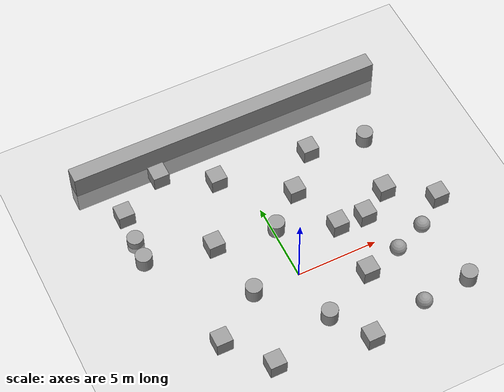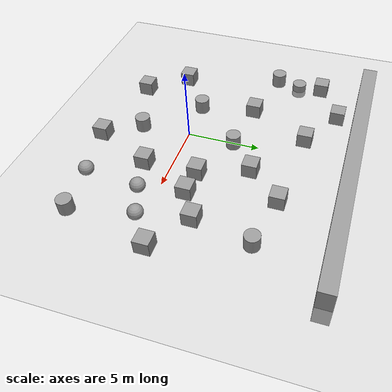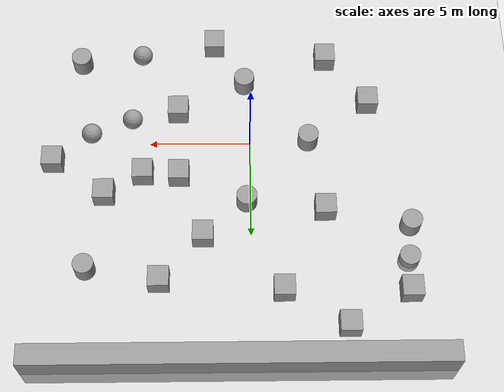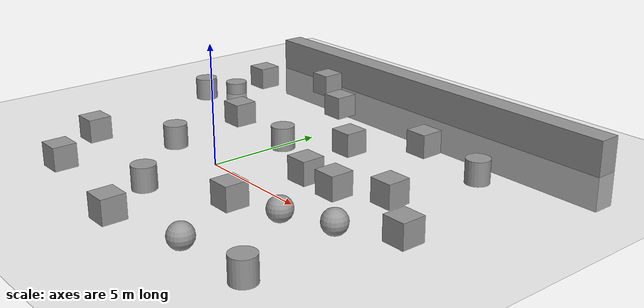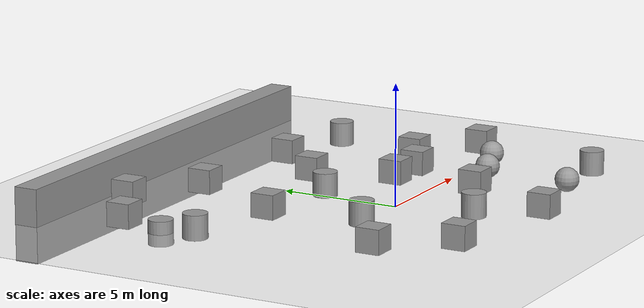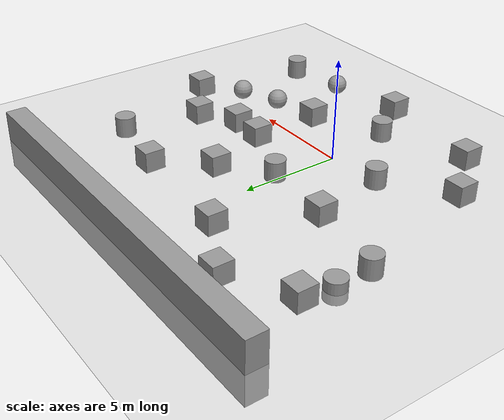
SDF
<sdf version="1.6">
 <world name="default">
  <light name="sun" type="directional">
   <pose>0 0 10 0 -0 0</pose>
   <diffuse>0.8 0.8 0.8 1</diffuse>
   <specular>0.2 0.2 0.2 1</specular>
   <attenuation>
    <range>1000</range>
    <constant>0.9</constant>
    <linear>0.01</linear>
    <quadratic>0.001</quadratic>
   </attenuation>
   <direction>-0.5 0.1 -0.9</direction>
  </light>
  <model name="ground_plane">
   <static>1</static>
   <link name="link">
    <collision name="collision">
     <geometry><plane><normal>0 0 1</normal><size>100 100</size></plane></geometry>
     <surface><friction><ode><mu>100</mu><mu2>50</mu2></ode></friction></surface>
    </collision>
    <visual name="visual">
     <cast_shadows>0</cast_shadows>
     <geometry><plane><normal>0 0 1</normal><size>100 100</size></plane></geometry>
     <material>
      <script><uri>file://media/materials/scripts/gazebo.material</uri><name>Gazebo/Grey</name></script>
     </material>
    </visual>
   </link>
  </model>
  <gravity>0 0 -9.8</gravity>
  <magnetic_field>6e-06 2.3e-05 -4.2e-05</magnetic_field>
  <atmosphere type="adiabatic"/>
  <physics name="default_physics" default="0" type="ode">
   <max_step_size>0.001</max_step_size>
   <real_time_factor>1</real_time_factor>
   <real_time_update_rate>1000</real_time_update_rate>
  </physics>
  <scene><ambient>0.4 0.4 0.4 1</ambient><background>0.7 0.7 0.7 1</background><shadows>1</shadows></scene>
  <spherical_coordinates>
   <surface_model>EARTH_WGS84</surface_model>
   <latitude_deg>0</latitude_deg>
   <longitude_deg>0</longitude_deg>
   <elevation>0</elevation>
   <heading_deg>0</heading_deg>
  </spherical_coordinates>
  <model name="unit_box">
   <pose>3.50577 1.84828 0.499995 -1e-05 0 0</pose>
   <link name="link">
    <inertial>
     <mass>1</mass>
     <inertia>
      <ixx>0.166667</ixx>
      <ixy>0</ixy>
      <ixz>0</ixz>
      <iyy>0.166667</iyy>
      <iyz>0</iyz>
      <izz>0.166667</izz>
     </inertia>
    </inertial>
    <collision name="collision"><geometry><box><size>1 1 1</size></box></geometry></collision>
    <visual name="visual">
     <geometry><box><size>1 1 1</size></box></geometry>
     <material>
      <script><name>Gazebo/Grey</name><uri>file://media/materials/scripts/gazebo.material</uri></script>
     </material>
    </visual>
   </link>
  </model>
  <model name="unit_box_0">
   <pose>3.58099 -1.73235 0.499995 0 1e-05 0</pose>
   <link name="link">
    <inertial>
     <mass>1</mass>
     <inertia>
      <ixx>0.166667</ixx>
      <ixy>0</ixy>
      <ixz>0</ixz>
      <iyy>0.166667</iyy>
      <iyz>0</iyz>
      <izz>0.166667</izz>
     </inertia>
    </inertial>
    <collision name="collision"><geometry><box><size>1 1 1</size></box></geometry></collision>
    <visual name="visual">
     <geometry><box><size>1 1 1</size></box></geometry>
     <material>
      <script><name>Gazebo/Grey</name><uri>file://media/materials/scripts/gazebo.material</uri></script>
     </material>
    </visual>
   </link>
  </model>
  <model name="unit_box_1">
   <pose>5.28207 1.7655 0.499995 -1e-05 0 0</pose>
   <link name="link">
    <inertial>
     <mass>1</mass>
     <inertia>
      <ixx>0.166667</ixx>
      <ixy>0</ixy>
      <ixz>0</ixz>
      <iyy>0.166667</iyy>
      <iyz>0</iyz>
      <izz>0.166667</izz>
     </inertia>
    </inertial>
    <collision name="collision"><geometry><box><size>1 1 1</size></box></geometry></collision>
    <visual name="visual">
     <geometry><box><size>1 1 1</size></box></geometry>
     <material>
      <script><name>Gazebo/Grey</name><uri>file://media/materials/scripts/gazebo.material</uri></script>
     </material>
    </visual>
   </link>
  </model>
  <model name="unit_box_2">
   <pose>7.14403 2.85686 0.499995 0 1e-05 0</pose>
   <link name="link">
    <inertial>
     <mass>1</mass>
     <inertia>
      <ixx>0.166667</ixx>
      <ixy>0</ixy>
      <ixz>0</ixz>
      <iyy>0.166667</iyy>
      <iyz>0</iyz>
      <izz>0.166667</izz>
     </inertia>
    </inertial>
    <collision name="collision"><geometry><box><size>1 1 1</size></box></geometry></collision>
    <visual name="visual">
     <geometry><box><size>1 1 1</size></box></geometry>
     <material>
      <script><name>Gazebo/Grey</name><uri>file://media/materials/scripts/gazebo.material</uri></script>
     </material>
    </visual>
   </link>
  </model>
  <model name="unit_sphere">
   <pose>5.86637 -1.18146 0.5 0 -0 0</pose>
   <link name="link">
    <inertial>
     <mass>1</mass>
     <inertia><ixx>0.1</ixx><ixy>0</ixy><ixz>0</ixz><iyy>0.1</iyy><iyz>0</iyz><izz>0.1</izz></inertia>
    </inertial>
    <collision name="collision"><geometry><sphere><radius>0.5</radius></sphere></geometry></collision>
    <visual name="visual">
     <geometry><sphere><radius>0.5</radius></sphere></geometry>
     <material>
      <script><name>Gazebo/Grey</name><uri>file://media/materials/scripts/gazebo.material</uri></script>
     </material>
    </visual>
   </link>
  </model>
  <model name="unit_cylinder">
   <pose>0.189928 3.2786 0.5 0 -0 0</pose>
   <link name="link">
    <inertial>
     <mass>1</mass>
     <inertia><ixx>0.145833</ixx><ixy>0</ixy><ixz>0</ixz><iyy>0.145833</iyy><iyz>0</iyz><izz>0.125</izz></inertia>
    </inertial>
    <collision name="collision">
     <geometry><cylinder><radius>0.5</radius><length>1</length></cylinder></geometry>
    </collision>
    <visual name="visual">
     <geometry><cylinder><radius>0.5</radius><length>1</length></cylinder></geometry>
     <material>
      <script><name>Gazebo/Grey</name><uri>file://media/materials/scripts/gazebo.material</uri></script>
     </material>
    </visual>
   </link>
  </model>
  <model name="unit_cylinder_0">
   <pose>0.247804 -3.34009 0.5 0 -0 0</pose>
   <link name="link">
    <inertial>
     <mass>1</mass>
     <inertia><ixx>0.145833</ixx><ixy>0</ixy><ixz>0</ixz><iyy>0.145833</iyy><iyz>0</iyz><izz>0.125</izz></inertia>
    </inertial>
    <collision name="collision">
     <geometry><cylinder><radius>0.5</radius><length>1</length></cylinder></geometry>
    </collision>
    <visual name="visual">
     <geometry><cylinder><radius>0.5</radius><length>1</length></cylinder></geometry>
     <material>
      <script><name>Gazebo/Grey</name><uri>file://media/materials/scripts/gazebo.material</uri></script>
     </material>
    </visual>
   </link>
  </model>
  <model name="unit_cylinder_1">
   <pose>-2.89428 -0.043473 0.5 0 -0 0</pose>
   <link name="link">
    <inertial>
     <mass>1</mass>
     <inertia><ixx>0.145833</ixx><ixy>0</ixy><ixz>0</ixz><iyy>0.145833</iyy><iyz>0</iyz><izz>0.125</izz></inertia>
    </inertial>
    <collision name="collision">
     <geometry><cylinder><radius>0.5</radius><length>1</length></cylinder></geometry>
    </collision>
    <visual name="visual">
     <geometry><cylinder><radius>0.5</radius><length>1</length></cylinder></geometry>
     <material>
      <script><name>Gazebo/Grey</name><uri>file://media/materials/scripts/gazebo.material</uri></script>
     </material>
    </visual>
   </link>
  </model>
  <model name="unit_sphere_0">
   <pose>7.88066 -0.390554 0.5 0 -0 0</pose>
   <link name="link">
    <inertial>
     <mass>1</mass>
     <inertia><ixx>0.1</ixx><ixy>0</ixy><ixz>0</ixz><iyy>0.1</iyy><iyz>0</iyz><izz>0.1</izz></inertia>
    </inertial>
    <collision name="collision"><geometry><sphere><radius>0.5</radius></sphere></geometry></collision>
    <visual name="visual">
     <geometry><sphere><radius>0.5</radius></sphere></geometry>
     <material>
      <script><name>Gazebo/Grey</name><uri>file://media/materials/scripts/gazebo.material</uri></script>
     </material>
    </visual>
   </link>
  </model>
  <model name="unit_box_3">
   <pose>9.74039 1.03192 0.499995 0 1e-05 0</pose>
   <link name="link">
    <inertial>
     <mass>1</mass>
     <inertia>
      <ixx>0.166667</ixx>
      <ixy>0</ixy>
      <ixz>0</ixz>
      <iyy>0.166667</iyy>
      <iyz>0</iyz>
      <izz>0.166667</izz>
     </inertia>
    </inertial>
    <collision name="collision"><geometry><box><size>1 1 1</size></box></geometry></collision>
    <visual name="visual">
     <geometry><box><size>1 1 1</size></box></geometry>
     <material>
      <script><name>Gazebo/Grey</name><uri>file://media/materials/scripts/gazebo.material</uri></script>
     </material>
    </visual>
   </link>
  </model>
  <model name="unit_box_4">
   <pose>4.38415 7.38919 0.499995 -1e-05 0 0</pose>
   <link name="link">
    <inertial>
     <mass>1</mass>
     <inertia>
      <ixx>0.166667</ixx>
      <ixy>0</ixy>
      <ixz>0</ixz>
      <iyy>0.166667</iyy>
      <iyz>0</iyz>
      <izz>0.166667</izz>
     </inertia>
    </inertial>
    <collision name="collision"><geometry><box><size>1 1 1</size></box></geometry></collision>
    <visual name="visual">
     <geometry><box><size>1 1 1</size></box></geometry>
     <material>
      <script><name>Gazebo/Grey</name><uri>file://media/materials/scripts/gazebo.material</uri></script>
     </material>
    </visual>
   </link>
  </model>
  <model name="unit_cylinder_2">
   <pose>7.90939 6.74313 0.5 0 -0 0</pose>
   <link name="link">
    <inertial>
     <mass>1</mass>
     <inertia><ixx>0.145833</ixx><ixy>0</ixy><ixz>0</ixz><iyy>0.145833</iyy><iyz>0</iyz><izz>0.125</izz></inertia>
    </inertial>
    <collision name="collision">
     <geometry><cylinder><radius>0.5</radius><length>1</length></cylinder></geometry>
    </collision>
    <visual name="visual">
     <geometry><cylinder><radius>0.5</radius><length>1</length></cylinder></geometry>
     <material>
      <script><name>Gazebo/Grey</name><uri>file://media/materials/scripts/gazebo.material</uri></script>
     </material>
    </visual>
   </link>
  </model>
  <model name="unit_box_5">
   <pose>-1.51534 7.8739 0.499995 -1e-05 0 0</pose>
   <link name="link">
    <inertial>
     <mass>1</mass>
     <inertia>
      <ixx>0.166667</ixx>
      <ixy>0</ixy>
      <ixz>0</ixz>
      <iyy>0.166667</iyy>
      <iyz>0</iyz>
      <izz>0.166667</izz>
     </inertia>
    </inertial>
    <collision name="collision"><geometry><box><size>1 1 1</size></box></geometry></collision>
    <visual name="visual">
     <geometry><box><size>1 1 1</size></box></geometry>
     <material>
      <script><name>Gazebo/Grey</name><uri>file://media/materials/scripts/gazebo.material</uri></script>
     </material>
    </visual>
   </link>
  </model>
  <model name="unit_cylinder_3">
   <pose>8.55962 -4.63166 0.5 0 -0 0</pose>
   <link name="link">
    <inertial>
     <mass>1</mass>
     <inertia><ixx>0.145833</ixx><ixy>0</ixy><ixz>0</ixz><iyy>0.145833</iyy><iyz>0</iyz><izz>0.125</izz></inertia>
    </inertial>
    <collision name="collision">
     <geometry><cylinder><radius>0.5</radius><length>1</length></cylinder></geometry>
    </collision>
    <visual name="visual">
     <geometry><cylinder><radius>0.5</radius><length>1</length></cylinder></geometry>
     <material>
      <script><name>Gazebo/Grey</name><uri>file://media/materials/scripts/gazebo.material</uri></script>
     </material>
    </visual>
   </link>
  </model>
  <model name="unit_sphere_1">
   <pose>5.45948 -4.94432 0.5 0 -0 0</pose>
   <link name="link">
    <inertial>
     <mass>1</mass>
     <inertia><ixx>0.1</ixx><ixy>0</ixy><ixz>0</ixz><iyy>0.1</iyy><iyz>0</iyz><izz>0.1</izz></inertia>
    </inertial>
    <collision name="collision"><geometry><sphere><radius>0.5</radius></sphere></geometry></collision>
    <visual name="visual">
     <geometry><sphere><radius>0.5</radius></sphere></geometry>
     <material>
      <script><name>Gazebo/Grey</name><uri>file://media/materials/scripts/gazebo.material</uri></script>
     </material>
    </visual>
   </link>
  </model>
  <model name="unit_box_6">
   <pose>1.76052 -5.65038 0.499995 0 1e-05 0</pose>
   <link name="link">
    <inertial>
     <mass>1</mass>
     <inertia>
      <ixx>0.166667</ixx>
      <ixy>0</ixy>
      <ixz>0</ixz>
      <iyy>0.166667</iyy>
      <iyz>0</iyz>
      <izz>0.166667</izz>
     </inertia>
    </inertial>
    <collision name="collision"><geometry><box><size>1 1 1</size></box></geometry></collision>
    <visual name="visual">
     <geometry><box><size>1 1 1</size></box></geometry>
     <material>
      <script><name>Gazebo/Grey</name><uri>file://media/materials/scripts/gazebo.material</uri></script>
     </material>
    </visual>
   </link>
  </model>
  <model name="unit_box_7">
   <pose>-3.89826 -4.76949 0.499995 -1e-05 0 0</pose>
   <link name="link">
    <inertial>
     <mass>1</mass>
     <inertia>
      <ixx>0.166667</ixx>
      <ixy>0</ixy>
      <ixz>0</ixz>
      <iyy>0.166667</iyy>
      <iyz>0</iyz>
      <izz>0.166667</izz>
     </inertia>
    </inertial>
    <collision name="collision"><geometry><box><size>1 1 1</size></box></geometry></collision>
    <visual name="visual">
     <geometry><box><size>1 1 1</size></box></geometry>
     <material>
      <script><name>Gazebo/Grey</name><uri>file://media/materials/scripts/gazebo.material</uri></script>
     </material>
    </visual>
   </link>
  </model>
  <model name="unit_box_8">
   <pose>-3.60209 3.74388 0.499995 0 1e-05 0</pose>
   <link name="link">
    <inertial>
     <mass>1</mass>
     <inertia>
      <ixx>0.166667</ixx>
      <ixy>0</ixy>
      <ixz>0</ixz>
      <iyy>0.166667</iyy>
      <iyz>0</iyz>
      <izz>0.166667</izz>
     </inertia>
    </inertial>
    <collision name="collision"><geometry><box><size>1 1 1</size></box></geometry></collision>
    <visual name="visual">
     <geometry><box><size>1 1 1</size></box></geometry>
     <material>
      <script><name>Gazebo/Grey</name><uri>file://media/materials/scripts/gazebo.material</uri></script>
     </material>
    </visual>
   </link>
  </model>
  <model name="unit_box_9">
   <pose>2.31832 5.09354 0.499995 -1e-05 0 0</pose>
   <link name="link">
    <inertial>
     <mass>1</mass>
     <inertia>
      <ixx>0.166667</ixx>
      <ixy>0</ixy>
      <ixz>0</ixz>
      <iyy>0.166667</iyy>
      <iyz>0</iyz>
      <izz>0.166667</izz>
     </inertia>
    </inertial>
    <collision name="collision"><geometry><box><size>1 1 1</size></box></geometry></collision>
    <visual name="visual">
     <geometry><box><size>1 1 1</size></box></geometry>
     <material>
      <script><name>Gazebo/Grey</name><uri>file://media/materials/scripts/gazebo.material</uri></script>
     </material>
    </visual>
   </link>
  </model>
  <model name="unit_box_10">
   <pose>-5.94339 -2.18223 0.499995 0 1e-05 0</pose>
   <link name="link">
    <inertial>
     <mass>1</mass>
     <inertia>
      <ixx>0.166667</ixx>
      <ixy>0</ixy>
      <ixz>0</ixz>
      <iyy>0.166667</iyy>
      <iyz>0</iyz>
      <izz>0.166667</izz>
     </inertia>
    </inertial>
    <collision name="collision"><geometry><box><size>1 1 1</size></box></geometry></collision>
    <visual name="visual">
     <geometry><box><size>1 1 1</size></box></geometry>
     <material>
      <script><name>Gazebo/Grey</name><uri>file://media/materials/scripts/gazebo.material</uri></script>
     </material>
    </visual>
   </link>
  </model>
  <model name="unit_box_11">
   <pose>-7.46237 7.95453 0.499995 -1e-05 0 0</pose>
   <link name="link">
    <inertial>
     <mass>1</mass>
     <inertia>
      <ixx>0.166667</ixx>
      <ixy>0</ixy>
      <ixz>0</ixz>
      <iyy>0.166667</iyy>
      <iyz>0</iyz>
      <izz>0.166667</izz>
     </inertia>
    </inertial>
    <collision name="collision"><geometry><box><size>1 1 1</size></box></geometry></collision>
    <visual name="visual">
     <geometry><box><size>1 1 1</size></box></geometry>
     <material>
      <script><name>Gazebo/Grey</name><uri>file://media/materials/scripts/gazebo.material</uri></script>
     </material>
    </visual>
   </link>
  </model>
  <model name="unit_box_12">
   <link name="link">
    <inertial>
     <mass>1</mass>
     <inertia>
      <ixx>0.166667</ixx>
      <ixy>0</ixy>
      <ixz>0</ixz>
      <iyy>0.166667</iyy>
      <iyz>0</iyz>
      <izz>0.166667</izz>
     </inertia>
    </inertial>
    <visual name="visual">
     <geometry><box><size>1 1 1</size></box></geometry>
     <material>
      <script><name>Gazebo/Grey</name><uri>file://media/materials/scripts/gazebo.material</uri></script>
      <shader type="pixel"><normal_map>__default__</normal_map></shader>
      <ambient>0.3 0.3 0.3 1</ambient>
      <diffuse>0.7 0.7 0.7 1</diffuse>
      <specular>0.01 0.01 0.01 1</specular>
      <emissive>0 0 0 1</emissive>
     </material>
    </visual>
    <collision name="collision">
     <pose>5 0 0 0 -0 0</pose>
     <geometry><box><size>20 1 3</size></box></geometry>
     <surface>
      <friction>
       <ode><mu>1</mu><mu2>1</mu2><fdir1>0 0 0</fdir1><slip1>0</slip1><slip2>0</slip2></ode>
       <torsional>
        <coefficient>1</coefficient>
        <patch_radius>0</patch_radius>
        <surface_radius>0</surface_radius>
        <use_patch_radius>1</use_patch_radius>
        <ode><slip>0</slip></ode>
       </torsional>
      </friction>
      <bounce><restitution_coefficient>0</restitution_coefficient><threshold>1e+06</threshold></bounce>
      <contact>
       <collide_without_contact>0</collide_without_contact>
       <collide_without_contact_bitmask>1</collide_without_contact_bitmask>
       <collide_bitmask>1</collide_bitmask>
       <ode>
        <soft_cfm>0</soft_cfm>
        <soft_erp>0.2</soft_erp>
        <kp>1e+13</kp>
        <kd>1</kd>
        <max_vel>0.01</max_vel>
        <min_depth>0</min_depth>
       </ode>
       <bullet>
        <split_impulse>1</split_impulse>
        <split_impulse_penetration_threshold>-0.01</split_impulse_penetration_threshold>
        <soft_cfm>0</soft_cfm>
        <soft_erp>0.2</soft_erp>
        <kp>1e+13</kp>
        <kd>1</kd>
       </bullet>
      </contact>
     </surface>
    </collision>
   </link>
   <link name="link_0">
    <pose>-3.16139 -5.00924 -4.4e-05 1e-05 -0 0</pose>
    <inertial>
     <mass>1</mass>
     <inertia><ixx>0.145833</ixx><ixy>0</ixy><ixz>0</ixz><iyy>0.145833</iyy><iyz>0</iyz><izz>0.125</izz></inertia>
    </inertial>
    <visual name="visual">
     <geometry><cylinder><radius>0.5</radius><length>1</length></cylinder></geometry>
     <material>
      <lighting>1</lighting>
      <script><uri>file://media/materials/scripts/gazebo.material</uri><name>Gazebo/Grey</name></script>
      <shader type="pixel"><normal_map>__default__</normal_map></shader>
      <ambient>0.3 0.3 0.3 1</ambient>
      <diffuse>0.7 0.7 0.7 1</diffuse>
      <specular>0.01 0.01 0.01 1</specular>
      <emissive>0 0 0 1</emissive>
     </material>
    </visual>
    <collision name="collision">
     <geometry><cylinder><radius>0.5</radius><length>1</length></cylinder></geometry>
     <surface>
      <friction>
       <ode><mu>1</mu><mu2>1</mu2><fdir1>0 0 0</fdir1><slip1>0</slip1><slip2>0</slip2></ode>
       <torsional>
        <coefficient>1</coefficient>
        <patch_radius>0</patch_radius>
        <surface_radius>0</surface_radius>
        <use_patch_radius>1</use_patch_radius>
        <ode><slip>0</slip></ode>
       </torsional>
      </friction>
      <bounce><restitution_coefficient>0</restitution_coefficient><threshold>1e+06</threshold></bounce>
      <contact>
       <collide_without_contact>0</collide_without_contact>
       <collide_without_contact_bitmask>1</collide_without_contact_bitmask>
       <collide_bitmask>1</collide_bitmask>
       <ode>
        <soft_cfm>0</soft_cfm>
        <soft_erp>0.2</soft_erp>
        <kp>1e+13</kp>
        <kd>1</kd>
        <max_vel>0.01</max_vel>
        <min_depth>0</min_depth>
       </ode>
       <bullet>
        <split_impulse>1</split_impulse>
        <split_impulse_penetration_threshold>-0.01</split_impulse_penetration_threshold>
        <soft_cfm>0</soft_cfm>
        <soft_erp>0.2</soft_erp>
        <kp>1e+13</kp>
        <kd>1</kd>
       </bullet>
      </contact>
     </surface>
    </collision>
   </link>
   <static>0</static>
   <pose>-4.50596 9.62519 0.499995 -1e-05 0 0</pose>
  </model>
  <model name="unit_box_12_0">
   <link name="link">
    <inertial>
     <mass>1</mass>
     <inertia>
      <ixx>0.166667</ixx>
      <ixy>0</ixy>
      <ixz>0</ixz>
      <iyy>0.166667</iyy>
      <iyz>0</iyz>
      <izz>0.166667</izz>
     </inertia>
    </inertial>
    <visual name="visual">
     <geometry><box><size>20 1 3</size></box></geometry>
     <material>
      <script><name>Gazebo/Grey</name><uri>file://media/materials/scripts/gazebo.material</uri></script>
      <shader type="pixel"><normal_map>__default__</normal_map></shader>
      <ambient>0.3 0.3 0.3 1</ambient>
      <diffuse>0.7 0.7 0.7 1</diffuse>
      <specular>0.01 0.01 0.01 1</specular>
      <emissive>0 0 0 1</emissive>
     </material>
     <pose>5 0 0 0 -0 0</pose>
    </visual>
    <collision name="collision">
     <pose>5 0 0 0 -0 0</pose>
     <geometry><box><size>20 1 3</size></box></geometry>
     <surface>
      <friction>
       <ode><mu>1</mu><mu2>1</mu2><fdir1>0 0 0</fdir1><slip1>0</slip1><slip2>0</slip2></ode>
       <torsional>
        <coefficient>1</coefficient>
        <patch_radius>0</patch_radius>
        <surface_radius>0</surface_radius>
        <use_patch_radius>1</use_patch_radius>
        <ode><slip>0</slip></ode>
       </torsional>
      </friction>
      <bounce><restitution_coefficient>0</restitution_coefficient><threshold>1e+06</threshold></bounce>
      <contact>
       <collide_without_contact>0</collide_without_contact>
       <collide_without_contact_bitmask>1</collide_without_contact_bitmask>
       <collide_bitmask>1</collide_bitmask>
       <ode>
        <soft_cfm>0</soft_cfm>
        <soft_erp>0.2</soft_erp>
        <kp>1e+13</kp>
        <kd>1</kd>
        <max_vel>0.01</max_vel>
        <min_depth>0</min_depth>
       </ode>
       <bullet>
        <split_impulse>1</split_impulse>
        <split_impulse_penetration_threshold>-0.01</split_impulse_penetration_threshold>
        <soft_cfm>0</soft_cfm>
        <soft_erp>0.2</soft_erp>
        <kp>1e+13</kp>
        <kd>1</kd>
       </bullet>
      </contact>
     </surface>
    </collision>
   </link>
   <link name="link_0">
    <pose>-3.16139 -5.00924 -4.4e-05 1e-05 -0 0</pose>
    <inertial>
     <mass>1</mass>
     <inertia><ixx>0.145833</ixx><ixy>0</ixy><ixz>0</ixz><iyy>0.145833</iyy><iyz>0</iyz><izz>0.125</izz></inertia>
    </inertial>
    <visual name="visual">
     <geometry><cylinder><radius>0.5</radius><length>1</length></cylinder></geometry>
     <material>
      <lighting>1</lighting>
      <script><uri>file://media/materials/scripts/gazebo.material</uri><name>Gazebo/Grey</name></script>
      <shader type="pixel"><normal_map>__default__</normal_map></shader>
      <ambient>0.3 0.3 0.3 1</ambient>
      <diffuse>0.7 0.7 0.7 1</diffuse>
      <specular>0.01 0.01 0.01 1</specular>
      <emissive>0 0 0 1</emissive>
     </material>
    </visual>
    <collision name="collision">
     <geometry><cylinder><radius>0.5</radius><length>1</length></cylinder></geometry>
     <surface>
      <friction>
       <ode><mu>1</mu><mu2>1</mu2><fdir1>0 0 0</fdir1><slip1>0</slip1><slip2>0</slip2></ode>
       <torsional>
        <coefficient>1</coefficient>
        <patch_radius>0</patch_radius>
        <surface_radius>0</surface_radius>
        <use_patch_radius>1</use_patch_radius>
        <ode><slip>0</slip></ode>
       </torsional>
      </friction>
      <bounce><restitution_coefficient>0</restitution_coefficient><threshold>1e+06</threshold></bounce>
      <contact>
       <collide_without_contact>0</collide_without_contact>
       <collide_without_contact_bitmask>1</collide_without_contact_bitmask>
       <collide_bitmask>1</collide_bitmask>
       <ode>
        <soft_cfm>0</soft_cfm>
        <soft_erp>0.2</soft_erp>
        <kp>1e+13</kp>
        <kd>1</kd>
        <max_vel>0.01</max_vel>
        <min_depth>0</min_depth>
       </ode>
       <bullet>
        <split_impulse>1</split_impulse>
        <split_impulse_penetration_threshold>-0.01</split_impulse_penetration_threshold>
        <soft_cfm>0</soft_cfm>
        <soft_erp>0.2</soft_erp>
        <kp>1e+13</kp>
        <kd>1</kd>
       </bullet>
      </contact>
     </surface>
    </collision>
   </link>
   <static>0</static>
   <pose>-4.36635 11.2668 0 0 -0 0</pose>
  </model>
 </world>
</sdf>
